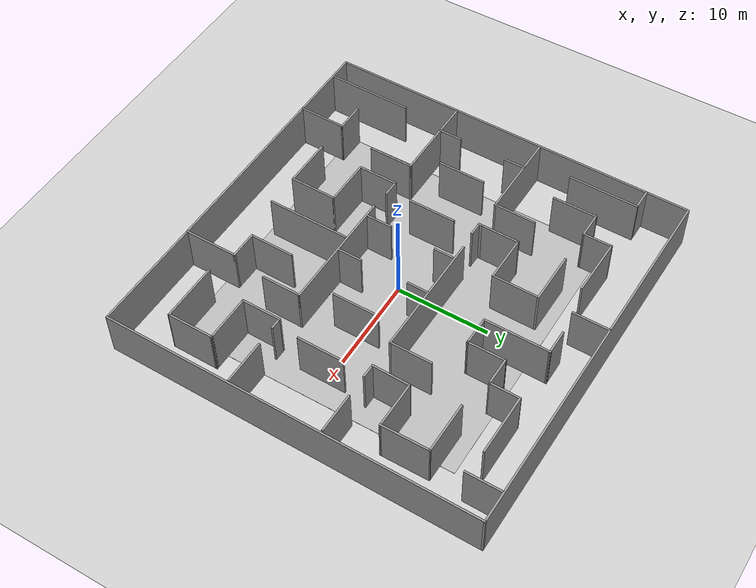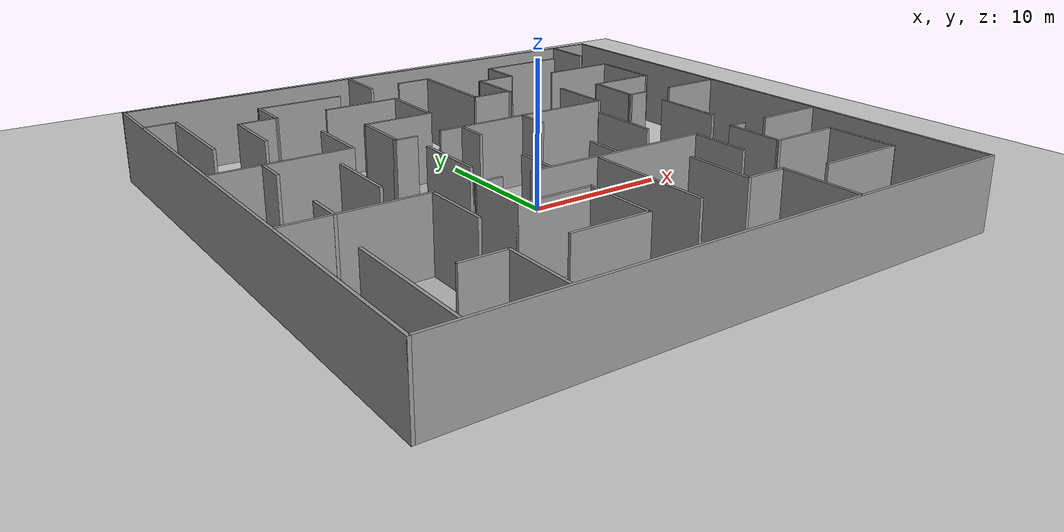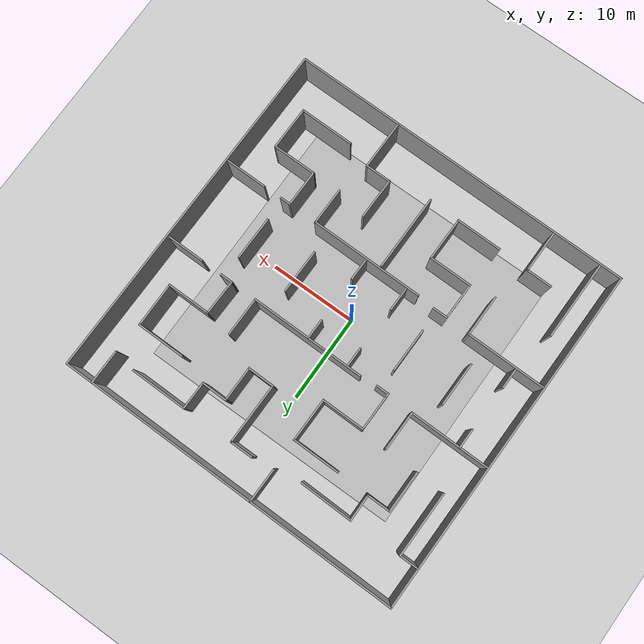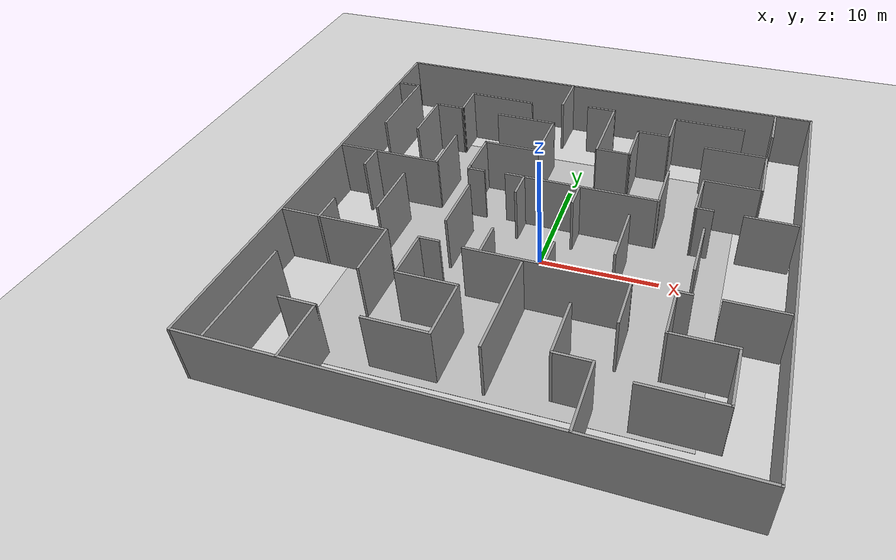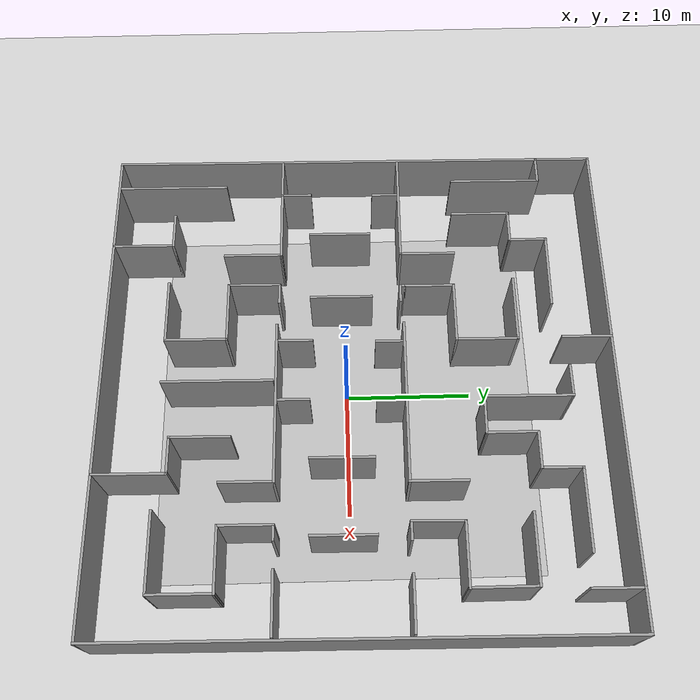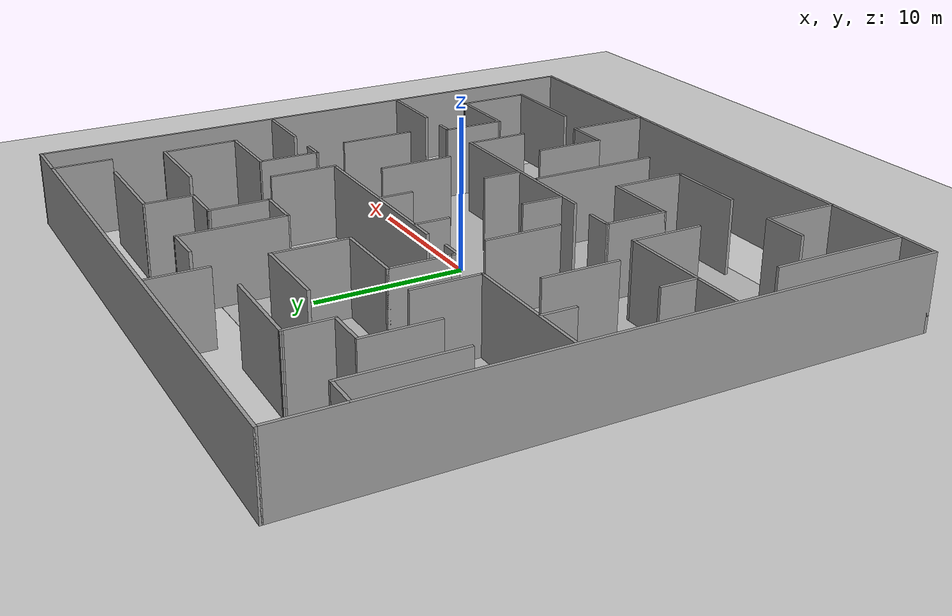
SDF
<sdf version="1.7">
 <world name="default">
  <light name="sun" type="directional">
   <pose>0 0 10 0 -0 0</pose>
   <diffuse>0.8 0.8 0.8 1</diffuse>
   <specular>0.2 0.2 0.2 1</specular>
   <attenuation>
    <range>1000</range>
    <constant>0.9</constant>
    <linear>0.01</linear>
    <quadratic>0.001</quadratic>
   </attenuation>
   <direction>-0.5 0.1 -0.9</direction>
   <spot><inner_angle>0</inner_angle><outer_angle>0</outer_angle><falloff>0</falloff></spot>
  </light>
  <model name="texture">
   <static>true</static>
   <link name="prometheus_logo">
    <visual name="visual">
     <cast_shadows>false</cast_shadows>
     <geometry><box><size>30.0 30.0 0.01</size></box></geometry>
     <material>
      <script><uri>model://prometheus_texture/texture.material</uri><name>prometheus_logo2</name></script>
     </material>
    </visual>
   </link>
  </model>
  <model name="ground_plane">
   <static>1</static>
   <link name="link">
    <collision name="collision">
     <geometry><plane><normal>0 0 1</normal><size>100 100</size></plane></geometry>
     <surface>
      <contact><collide_bitmask>65535</collide_bitmask></contact>
      <friction><ode><mu>100</mu><mu2>50</mu2></ode></friction>
     </surface>
    </collision>
    <visual name="visual">
     <cast_shadows>0</cast_shadows>
     <geometry><plane><normal>0 0 1</normal><size>100 100</size></plane></geometry>
     <material>
      <script><uri>file://media/materials/scripts/gazebo.material</uri><name>Gazebo/Grey</name></script>
     </material>
    </visual>
   </link>
  </model>
  <gravity>0 0 -9.8</gravity>
  <magnetic_field>6e-06 2.3e-05 -4.2e-05</magnetic_field>
  <atmosphere type="adiabatic"/>
  <physics type="ode">
   <max_step_size>0.001</max_step_size>
   <real_time_factor>1</real_time_factor>
   <real_time_update_rate>1000</real_time_update_rate>
  </physics>
  <scene><ambient>0.4 0.4 0.4 1</ambient><background>0.7 0.7 0.7 1</background><shadows>1</shadows></scene>
  <spherical_coordinates>
   <surface_model>EARTH_WGS84</surface_model>
   <latitude_deg>0</latitude_deg>
   <longitude_deg>0</longitude_deg>
   <elevation>0</elevation>
   <heading_deg>0</heading_deg>
  </spherical_coordinates>
  <model name="moze2">
   <pose>0.010084 0.948279 0 0 0 -1.58143</pose>
   <link name="Wall_100">
    <collision name="Wall_100_Collision">
     <geometry><box><size>4.5505 0.2 5</size></box></geometry>
     <pose>0 0 2.5 0 -0 0</pose>
    </collision>
    <visual name="Wall_100_Visual">
     <pose>0 0 2.5 0 -0 0</pose>
     <geometry><box><size>4.5505 0.2 5</size></box></geometry>
     <material>
      <script><uri>file://media/materials/scripts/gazebo.material</uri><name>Gazebo/Grey</name></script>
      <ambient>1 1 1 1</ambient>
     </material>
     <meta><layer>0</layer></meta>
    </visual>
    <pose>-5.834 8.699 0 0 -0 3.14159</pose>
   </link>
   <link name="Wall_102">
    <collision name="Wall_102_Collision">
     <geometry><box><size>5.55 0.2 5</size></box></geometry>
     <pose>0 0 2.5 0 -0 0</pose>
    </collision>
    <visual name="Wall_102_Visual">
     <pose>0 0 2.5 0 -0 0</pose>
     <geometry><box><size>5.55 0.2 5</size></box></geometry>
     <material>
      <script><uri>file://media/materials/scripts/gazebo.material</uri><name>Gazebo/Grey</name></script>
      <ambient>1 1 1 1</ambient>
     </material>
     <meta><layer>0</layer></meta>
    </visual>
    <pose>-12.609 13.877 0 0 -0 1.5708</pose>
   </link>
   <link name="Wall_103">
    <collision name="Wall_103_Collision">
     <geometry><box><size>5.20337 0.2 5</size></box></geometry>
     <pose>0 0 2.5 0 -0 0</pose>
    </collision>
    <visual name="Wall_103_Visual">
     <pose>0 0 2.5 0 -0 0</pose>
     <geometry><box><size>5.20337 0.2 5</size></box></geometry>
     <material>
      <script><uri>file://media/materials/scripts/gazebo.material</uri><name>Gazebo/Grey</name></script>
      <ambient>1 1 1 1</ambient>
     </material>
     <meta><layer>0</layer></meta>
    </visual>
    <pose>-10.1075 16.5825 0 0 -0 0.012192</pose>
   </link>
   <link name="Wall_104">
    <collision name="Wall_104_Collision">
     <geometry><box><size>5.04982 0.2 5</size></box></geometry>
     <pose>0 0 2.5 0 -0 0</pose>
    </collision>
    <visual name="Wall_104_Visual">
     <pose>0 0 2.5 0 -0 0</pose>
     <geometry><box><size>5.04982 0.2 5</size></box></geometry>
     <material>
      <script><uri>file://media/materials/scripts/gazebo.material</uri><name>Gazebo/Grey</name></script>
      <ambient>1 1 1 1</ambient>
     </material>
     <meta><layer>0</layer></meta>
    </visual>
    <pose>-7.606 14.188 0 0 -0 -1.5708</pose>
   </link>
   <link name="Wall_105">
    <collision name="Wall_105_Collision">
     <geometry><box><size>4.14747 0.2 5</size></box></geometry>
     <pose>0 0 2.5 0 -0 0</pose>
    </collision>
    <visual name="Wall_105_Visual">
     <pose>0 0 2.5 0 -0 0</pose>
     <geometry><box><size>4.14747 0.2 5</size></box></geometry>
     <material>
      <script><uri>file://media/materials/scripts/gazebo.material</uri><name>Gazebo/Grey</name></script>
      <ambient>1 1 1 1</ambient>
     </material>
     <meta><layer>0</layer></meta>
    </visual>
    <pose>-5.6325 11.7325 0 0 -0 -0.015454</pose>
   </link>
   <link name="Wall_106">
    <collision name="Wall_106_Collision">
     <geometry><box><size>1.5495 0.2 5</size></box></geometry>
     <pose>0 0 2.5 0 -0 0</pose>
    </collision>
    <visual name="Wall_106_Visual">
     <pose>0 0 2.5 0 -0 0</pose>
     <geometry><box><size>1.5495 0.2 5</size></box></geometry>
     <material>
      <script><uri>file://media/materials/scripts/gazebo.material</uri><name>Gazebo/Grey</name></script>
      <ambient>1 1 1 1</ambient>
     </material>
     <meta><layer>0</layer></meta>
    </visual>
    <pose>-3.659 12.377 0 0 -0 1.5708</pose>
   </link>
   <link name="Wall_149">
    <collision name="Wall_149_Collision">
     <geometry><box><size>5.05035 0.2 5</size></box></geometry>
     <pose>0 0 2.5 0 -0 0</pose>
    </collision>
    <visual name="Wall_149_Visual">
     <pose>0 0 2.5 0 -0 0</pose>
     <geometry><box><size>5.05035 0.2 5</size></box></geometry>
     <material>
      <script><uri>file://media/materials/scripts/gazebo.material</uri><name>Gazebo/Grey</name></script>
      <ambient>1 1 1 1</ambient>
     </material>
     <meta><layer>0</layer></meta>
    </visual>
    <pose>1.288 12.695 0 0 -0 0</pose>
   </link>
   <link name="Wall_151">
    <collision name="Wall_151_Collision">
     <geometry><box><size>5.0498 0.2 5</size></box></geometry>
     <pose>0 0 2.5 0 -0 0</pose>
    </collision>
    <visual name="Wall_151_Visual">
     <pose>0 0 2.5 0 -0 0</pose>
     <geometry><box><size>5.0498 0.2 5</size></box></geometry>
     <material>
      <script><uri>file://media/materials/scripts/gazebo.material</uri><name>Gazebo/Grey</name></script>
      <ambient>1 1 1 1</ambient>
     </material>
     <meta><layer>0</layer></meta>
    </visual>
    <pose>1.329 6.788 0 0 -0 0</pose>
   </link>
   <link name="Wall_153">
    <collision name="Wall_153_Collision">
     <geometry><box><size>5.05039 0.2 5</size></box></geometry>
     <pose>0 0 2.5 0 -0 0</pose>
    </collision>
    <visual name="Wall_153_Visual">
     <pose>0 0 2.5 0 -0 0</pose>
     <geometry><box><size>5.05039 0.2 5</size></box></geometry>
     <material>
      <script><uri>file://media/materials/scripts/gazebo.material</uri><name>Gazebo/Grey</name></script>
      <ambient>1 1 1 1</ambient>
     </material>
     <meta><layer>0</layer></meta>
    </visual>
    <pose>1.375 -12.717 0 0 -0 0</pose>
   </link>
   <link name="Wall_155">
    <collision name="Wall_155_Collision">
     <geometry><box><size>9.25 0.2 5</size></box></geometry>
     <pose>0 0 2.5 0 -0 0</pose>
    </collision>
    <visual name="Wall_155_Visual">
     <pose>0 0 2.5 0 -0 0</pose>
     <geometry><box><size>9.25 0.2 5</size></box></geometry>
     <material>
      <script><uri>file://media/materials/scripts/gazebo.material</uri><name>Gazebo/Grey</name></script>
      <ambient>1 1 1 1</ambient>
     </material>
     <meta><layer>0</layer></meta>
    </visual>
    <pose>6.192 -15.309 0 0 -0 1.5708</pose>
   </link>
   <link name="Wall_156">
    <collision name="Wall_156_Collision">
     <geometry><box><size>4.80038 0.2 5</size></box></geometry>
     <pose>0 0 2.5 0 -0 0</pose>
    </collision>
    <visual name="Wall_156_Visual">
     <pose>0 0 2.5 0 -0 0</pose>
     <geometry><box><size>4.80038 0.2 5</size></box></geometry>
     <material>
      <script><uri>file://media/materials/scripts/gazebo.material</uri><name>Gazebo/Grey</name></script>
      <ambient>1 1 1 1</ambient>
     </material>
     <meta><layer>0</layer></meta>
    </visual>
    <pose>8.492 -10.784 0 0 -0 0</pose>
   </link>
   <link name="Wall_158">
    <collision name="Wall_158_Collision">
     <geometry><box><size>9 0.2 5</size></box></geometry>
     <pose>0 0 2.5 0 -0 0</pose>
    </collision>
    <visual name="Wall_158_Visual">
     <pose>0 0 2.5 0 -0 0</pose>
     <geometry><box><size>9 0.2 5</size></box></geometry>
     <material>
      <script><uri>file://media/materials/scripts/gazebo.material</uri><name>Gazebo/Grey</name></script>
      <ambient>1 1 1 1</ambient>
     </material>
     <meta><layer>0</layer></meta>
    </visual>
    <pose>15.407 -17.518 0 0 -0 3.14159</pose>
   </link>
   <link name="Wall_161">
    <collision name="Wall_161_Collision">
     <geometry><box><size>3.05 0.2 5</size></box></geometry>
     <pose>0 0 2.5 0 -0 0</pose>
    </collision>
    <visual name="Wall_161_Visual">
     <pose>0 0 2.5 0 -0 0</pose>
     <geometry><box><size>3.05 0.2 5</size></box></geometry>
     <material>
      <script><uri>file://media/materials/scripts/gazebo.material</uri><name>Gazebo/Grey</name></script>
      <ambient>1 1 1 1</ambient>
     </material>
     <meta><layer>0</layer></meta>
    </visual>
    <pose>15.107 -13.243 0 0 -0 1.5708</pose>
   </link>
   <link name="Wall_162">
    <collision name="Wall_162_Collision">
     <geometry><box><size>5.04975 0.2 5</size></box></geometry>
     <pose>0 0 2.5 0 -0 0</pose>
    </collision>
    <visual name="Wall_162_Visual">
     <pose>0 0 2.5 0 -0 0</pose>
     <geometry><box><size>5.04975 0.2 5</size></box></geometry>
     <material>
      <script><uri>file://media/materials/scripts/gazebo.material</uri><name>Gazebo/Grey</name></script>
      <ambient>1 1 1 1</ambient>
     </material>
     <meta><layer>0</layer></meta>
    </visual>
    <pose>17.532 -11.818 0 0 -0 0</pose>
   </link>
   <link name="Wall_164">
    <collision name="Wall_164_Collision">
     <geometry><box><size>1.8 0.2 5</size></box></geometry>
     <pose>0 0 2.5 0 -0 0</pose>
    </collision>
    <visual name="Wall_164_Visual">
     <pose>0 0 2.5 0 -0 0</pose>
     <geometry><box><size>1.8 0.2 5</size></box></geometry>
     <material>
      <script><uri>file://media/materials/scripts/gazebo.material</uri><name>Gazebo/Grey</name></script>
      <ambient>1 1 1 1</ambient>
     </material>
     <meta><layer>0</layer></meta>
    </visual>
    <pose>6.266 -7.202 0 0 -0 -1.5708</pose>
   </link>
   <link name="Wall_165">
    <collision name="Wall_165_Collision">
     <geometry><box><size>4.3 0.2 5</size></box></geometry>
     <pose>0 0 2.5 0 -0 0</pose>
    </collision>
    <visual name="Wall_165_Visual">
     <pose>0 0 2.5 0 -0 0</pose>
     <geometry><box><size>4.3 0.2 5</size></box></geometry>
     <material>
      <script><uri>file://media/materials/scripts/gazebo.material</uri><name>Gazebo/Grey</name></script>
      <ambient>1 1 1 1</ambient>
     </material>
     <meta><layer>0</layer></meta>
    </visual>
    <pose>8.316 -8.002 0 0 -0 0</pose>
   </link>
   <link name="Wall_166">
    <collision name="Wall_166_Collision">
     <geometry><box><size>5.05 0.2 5</size></box></geometry>
     <pose>0 0 2.5 0 -0 0</pose>
    </collision>
    <visual name="Wall_166_Visual">
     <pose>0 0 2.5 0 -0 0</pose>
     <geometry><box><size>5.05 0.2 5</size></box></geometry>
     <material>
      <script><uri>file://media/materials/scripts/gazebo.material</uri><name>Gazebo/Grey</name></script>
      <ambient>1 1 1 1</ambient>
     </material>
     <meta><layer>0</layer></meta>
    </visual>
    <pose>10.366 -5.577 0 0 -0 1.5708</pose>
   </link>
   <link name="Wall_167">
    <collision name="Wall_167_Collision">
     <geometry><box><size>5.05 0.2 5</size></box></geometry>
     <pose>0 0 2.5 0 -0 0</pose>
    </collision>
    <visual name="Wall_167_Visual">
     <pose>0 0 2.5 0 -0 0</pose>
     <geometry><box><size>5.05 0.2 5</size></box></geometry>
     <material>
      <script><uri>file://media/materials/scripts/gazebo.material</uri><name>Gazebo/Grey</name></script>
      <ambient>1 1 1 1</ambient>
     </material>
     <meta><layer>0</layer></meta>
    </visual>
    <pose>12.791 -3.152 0 0 -0 0</pose>
   </link>
   <link name="Wall_168">
    <collision name="Wall_168_Collision">
     <geometry><box><size>5.29959 0.2 5</size></box></geometry>
     <pose>0 0 2.5 0 -0 0</pose>
    </collision>
    <visual name="Wall_168_Visual">
     <pose>0 0 2.5 0 -0 0</pose>
     <geometry><box><size>5.29959 0.2 5</size></box></geometry>
     <material>
      <script><uri>file://media/materials/scripts/gazebo.material</uri><name>Gazebo/Grey</name></script>
      <ambient>1 1 1 1</ambient>
     </material>
     <meta><layer>0</layer></meta>
    </visual>
    <pose>15.216 -5.702 0 0 -0 -1.5708</pose>
   </link>
   <link name="Wall_170">
    <collision name="Wall_170_Collision">
     <geometry><box><size>2.30029 0.2 5</size></box></geometry>
     <pose>0 0 2.5 0 -0 0</pose>
    </collision>
    <visual name="Wall_170_Visual">
     <pose>0 0 2.5 0 -0 0</pose>
     <geometry><box><size>2.30029 0.2 5</size></box></geometry>
     <material>
      <script><uri>file://media/materials/scripts/gazebo.material</uri><name>Gazebo/Grey</name></script>
      <ambient>1 1 1 1</ambient>
     </material>
     <meta><layer>0</layer></meta>
    </visual>
    <pose>-2.506 2.04 0 0 -0 0</pose>
   </link>
   <link name="Wall_172">
    <collision name="Wall_172_Collision">
     <geometry><box><size>2.29971 0.2 5</size></box></geometry>
     <pose>0 0 2.5 0 -0 0</pose>
    </collision>
    <visual name="Wall_172_Visual">
     <pose>0 0 2.5 0 -0 0</pose>
     <geometry><box><size>2.29971 0.2 5</size></box></geometry>
     <material>
      <script><uri>file://media/materials/scripts/gazebo.material</uri><name>Gazebo/Grey</name></script>
      <ambient>1 1 1 1</ambient>
     </material>
     <meta><layer>0</layer></meta>
    </visual>
    <pose>-2.506 -2.81 0 0 -0 3.14159</pose>
   </link>
   <link name="Wall_174">
    <collision name="Wall_174_Collision">
     <geometry><box><size>13.11 0.2 5</size></box></geometry>
     <pose>0 0 2.5 0 -0 0</pose>
    </collision>
    <visual name="Wall_174_Visual">
     <pose>0 0 2.5 0 -0 0</pose>
     <geometry><box><size>13.11 0.2 5</size></box></geometry>
     <material>
      <script><uri>file://media/materials/scripts/gazebo.material</uri><name>Gazebo/Grey</name></script>
      <ambient>1 1 1 1</ambient>
     </material>
     <meta><layer>0</layer></meta>
    </visual>
    <pose>6.424 2.132 0 0 -0 1.5708</pose>
   </link>
   <link name="Wall_175">
    <collision name="Wall_175_Collision">
     <geometry><box><size>4.3 0.2 5</size></box></geometry>
     <pose>0 0 2.5 0 -0 0</pose>
    </collision>
    <visual name="Wall_175_Visual">
     <pose>0 0 2.5 0 -0 0</pose>
     <geometry><box><size>4.3 0.2 5</size></box></geometry>
     <material>
      <script><uri>file://media/materials/scripts/gazebo.material</uri><name>Gazebo/Grey</name></script>
      <ambient>1 1 1 1</ambient>
     </material>
     <meta><layer>0</layer></meta>
    </visual>
    <pose>8.474 8.587 0 0 -0 0</pose>
   </link>
   <link name="Wall_177">
    <collision name="Wall_177_Collision">
     <geometry><box><size>2.54968 0.2 5</size></box></geometry>
     <pose>0 0 2.5 0 -0 0</pose>
    </collision>
    <visual name="Wall_177_Visual">
     <pose>0 0 2.5 0 -0 0</pose>
     <geometry><box><size>2.54968 0.2 5</size></box></geometry>
     <material>
      <script><uri>file://media/materials/scripts/gazebo.material</uri><name>Gazebo/Grey</name></script>
      <ambient>1 1 1 1</ambient>
     </material>
     <meta><layer>0</layer></meta>
    </visual>
    <pose>5.023 -16.616 0 0 -0 0</pose>
   </link>
   <link name="Wall_179">
    <collision name="Wall_179_Collision">
     <geometry><box><size>2.30003 0.2 5</size></box></geometry>
     <pose>0 0 2.5 0 -0 0</pose>
    </collision>
    <visual name="Wall_179_Visual">
     <pose>0 0 2.5 0 -0 0</pose>
     <geometry><box><size>2.30003 0.2 5</size></box></geometry>
     <material>
      <script><uri>file://media/materials/scripts/gazebo.material</uri><name>Gazebo/Grey</name></script>
      <ambient>1 1 1 1</ambient>
     </material>
     <meta><layer>0</layer></meta>
    </visual>
    <pose>-2.498 -16.545 0 0 -0 0</pose>
   </link>
   <link name="Wall_182">
    <collision name="Wall_182_Collision">
     <geometry><box><size>2.79954 0.2 5</size></box></geometry>
     <pose>0 0 2.5 0 -0 0</pose>
    </collision>
    <visual name="Wall_182_Visual">
     <pose>0 0 2.5 0 -0 0</pose>
     <geometry><box><size>2.79954 0.2 5</size></box></geometry>
     <material>
      <script><uri>file://media/materials/scripts/gazebo.material</uri><name>Gazebo/Grey</name></script>
      <ambient>1 1 1 1</ambient>
     </material>
     <meta><layer>0</layer></meta>
    </visual>
    <pose>4.946 -2.972 0 0 -0 3.14159</pose>
   </link>
   <link name="Wall_184">
    <collision name="Wall_184_Collision">
     <geometry><box><size>2.54982 0.2 5</size></box></geometry>
     <pose>0 0 2.5 0 -0 0</pose>
    </collision>
    <visual name="Wall_184_Visual">
     <pose>0 0 2.5 0 -0 0</pose>
     <geometry><box><size>2.54982 0.2 5</size></box></geometry>
     <material>
      <script><uri>file://media/materials/scripts/gazebo.material</uri><name>Gazebo/Grey</name></script>
      <ambient>1 1 1 1</ambient>
     </material>
     <meta><layer>0</layer></meta>
    </visual>
    <pose>5.043 2.065 0 0 -0 0</pose>
   </link>
   <link name="Wall_186">
    <collision name="Wall_186_Collision">
     <geometry><box><size>5.04982 0.2 5</size></box></geometry>
     <pose>0 0 2.5 0 -0 0</pose>
    </collision>
    <visual name="Wall_186_Visual">
     <pose>0 0 2.5 0 -0 0</pose>
     <geometry><box><size>5.04982 0.2 5</size></box></geometry>
     <material>
      <script><uri>file://media/materials/scripts/gazebo.material</uri><name>Gazebo/Grey</name></script>
      <ambient>1 1 1 1</ambient>
     </material>
     <meta><layer>0</layer></meta>
    </visual>
    <pose>12.901 16.753 0 0 -0 3.14159</pose>
   </link>
   <link name="Wall_187">
    <collision name="Wall_187_Collision">
     <geometry><box><size>5.10211 0.2 5</size></box></geometry>
     <pose>0 0 2.5 0 -0 0</pose>
    </collision>
    <visual name="Wall_187_Visual">
     <pose>0 0 2.5 0 -0 0</pose>
     <geometry><box><size>5.10211 0.2 5</size></box></geometry>
     <material>
      <script><uri>file://media/materials/scripts/gazebo.material</uri><name>Gazebo/Grey</name></script>
      <ambient>1 1 1 1</ambient>
     </material>
     <meta><layer>0</layer></meta>
    </visual>
    <pose>10.4805 14.302 0 0 -0 -1.56896</pose>
   </link>
   <link name="Wall_188">
    <collision name="Wall_188_Collision">
     <geometry><box><size>4.3004 0.2 5</size></box></geometry>
     <pose>0 0 2.5 0 -0 0</pose>
    </collision>
    <visual name="Wall_188_Visual">
     <pose>0 0 2.5 0 -0 0</pose>
     <geometry><box><size>4.3004 0.2 5</size></box></geometry>
     <material>
      <script><uri>file://media/materials/scripts/gazebo.material</uri><name>Gazebo/Grey</name></script>
      <ambient>1 1 1 1</ambient>
     </material>
     <meta><layer>0</layer></meta>
    </visual>
    <pose>8.435 11.851 0 0 -0 3.14159</pose>
   </link>
   <link name="Wall_189">
    <collision name="Wall_189_Collision">
     <geometry><box><size>1.2999 0.2 5</size></box></geometry>
     <pose>0 0 2.5 0 -0 0</pose>
    </collision>
    <visual name="Wall_189_Visual">
     <pose>0 0 2.5 0 -0 0</pose>
     <geometry><box><size>1.2999 0.2 5</size></box></geometry>
     <material>
      <script><uri>file://media/materials/scripts/gazebo.material</uri><name>Gazebo/Grey</name></script>
      <ambient>1 1 1 1</ambient>
     </material>
     <meta><layer>0</layer></meta>
    </visual>
    <pose>6.385 12.401 0 0 -0 1.5708</pose>
   </link>
   <link name="Wall_191">
    <collision name="Wall_191_Collision">
     <geometry><box><size>5.75 0.2 5</size></box></geometry>
     <pose>0 0 2.5 0 -0 0</pose>
    </collision>
    <visual name="Wall_191_Visual">
     <pose>0 0 2.5 0 -0 0</pose>
     <geometry><box><size>5.75 0.2 5</size></box></geometry>
     <material>
      <script><uri>file://media/materials/scripts/gazebo.material</uri><name>Gazebo/Grey</name></script>
      <ambient>1 1 1 1</ambient>
     </material>
     <meta><layer>0</layer></meta>
    </visual>
    <pose>17.179 7.858 0 0 -0 3.14159</pose>
   </link>
   <link name="Wall_192">
    <collision name="Wall_192_Collision">
     <geometry><box><size>3.05 0.2 5</size></box></geometry>
     <pose>0 0 2.5 0 -0 0</pose>
    </collision>
    <visual name="Wall_192_Visual">
     <pose>0 0 2.5 0 -0 0</pose>
     <geometry><box><size>3.05 0.2 5</size></box></geometry>
     <material>
      <script><uri>file://media/materials/scripts/gazebo.material</uri><name>Gazebo/Grey</name></script>
      <ambient>1 1 1 1</ambient>
     </material>
     <meta><layer>0</layer></meta>
    </visual>
    <pose>14.404 6.433 0 0 -0 -1.5708</pose>
   </link>
   <link name="Wall_193">
    <collision name="Wall_193_Collision">
     <geometry><box><size>4.8004 0.2 5</size></box></geometry>
     <pose>0 0 2.5 0 -0 0</pose>
    </collision>
    <visual name="Wall_193_Visual">
     <pose>0 0 2.5 0 -0 0</pose>
     <geometry><box><size>4.8004 0.2 5</size></box></geometry>
     <material>
      <script><uri>file://media/materials/scripts/gazebo.material</uri><name>Gazebo/Grey</name></script>
      <ambient>1 1 1 1</ambient>
     </material>
     <meta><layer>0</layer></meta>
    </visual>
    <pose>12.104 5.008 0 0 -0 3.14159</pose>
   </link>
   <link name="Wall_195">
    <collision name="Wall_195_Collision">
     <geometry><box><size>4.79978 0.2 5</size></box></geometry>
     <pose>0 0 2.5 0 -0 0</pose>
    </collision>
    <visual name="Wall_195_Visual">
     <pose>0 0 2.5 0 -0 0</pose>
     <geometry><box><size>4.79978 0.2 5</size></box></geometry>
     <material>
      <script><uri>file://media/materials/scripts/gazebo.material</uri><name>Gazebo/Grey</name></script>
      <ambient>1 1 1 1</ambient>
     </material>
     <meta><layer>0</layer></meta>
    </visual>
    <pose>6.343 17.439 0 0 -0 1.5708</pose>
   </link>
   <link name="Wall_197">
    <collision name="Wall_197_Collision">
     <geometry><box><size>4.30039 0.2 5</size></box></geometry>
     <pose>0 0 2.5 0 -0 0</pose>
    </collision>
    <visual name="Wall_197_Visual">
     <pose>0 0 2.5 0 -0 0</pose>
     <geometry><box><size>4.30039 0.2 5</size></box></geometry>
     <material>
      <script><uri>file://media/materials/scripts/gazebo.material</uri><name>Gazebo/Grey</name></script>
      <ambient>1 1 1 1</ambient>
     </material>
     <meta><layer>0</layer></meta>
    </visual>
    <pose>-3.659 17.614 0 0 -0 1.5708</pose>
   </link>
   <link name="Wall_200">
    <collision name="Wall_200_Collision">
     <geometry><box><size>8.75 0.2 5</size></box></geometry>
     <pose>0 0 2.5 0 -0 0</pose>
    </collision>
    <visual name="Wall_200_Visual">
     <pose>0 0 2.5 0 -0 0</pose>
     <geometry><box><size>8.75 0.2 5</size></box></geometry>
     <material>
      <script><uri>file://media/materials/scripts/gazebo.material</uri><name>Gazebo/Grey</name></script>
      <ambient>1 1 1 1</ambient>
     </material>
     <meta><layer>0</layer></meta>
    </visual>
    <pose>10.997 0.431 0 0 -0 0</pose>
   </link>
   <link name="Wall_48">
    <collision name="Wall_48_Collision">
     <geometry><box><size>40.2 0.2 5</size></box></geometry>
     <pose>0 0 2.5 0 -0 0</pose>
    </collision>
    <visual name="Wall_48_Visual">
     <pose>0 0 2.5 0 -0 0</pose>
     <geometry><box><size>40.2 0.2 5</size></box></geometry>
     <material>
      <script><uri>file://media/materials/scripts/gazebo.material</uri><name>Gazebo/Grey</name></script>
      <ambient>1 1 1 1</ambient>
     </material>
     <meta><layer>0</layer></meta>
    </visual>
    <pose>0 20 0 0 -0 0</pose>
   </link>
   <link name="Wall_50">
    <collision name="Wall_50_Collision">
     <geometry><box><size>40.2 0.2 5</size></box></geometry>
     <pose>0 0 2.5 0 -0 0</pose>
    </collision>
    <visual name="Wall_50_Visual">
     <pose>0 0 2.5 0 -0 0</pose>
     <geometry><box><size>40.2 0.2 5</size></box></geometry>
     <material>
      <script><uri>file://media/materials/scripts/gazebo.material</uri><name>Gazebo/Grey</name></script>
      <ambient>1 1 1 1</ambient>
     </material>
     <meta><layer>0</layer></meta>
    </visual>
    <pose>-20 0 0 0 -0 -1.5708</pose>
   </link>
   <link name="Wall_52">
    <collision name="Wall_52_Collision">
     <geometry><box><size>0.15 0.15 2.5</size></box></geometry>
     <pose>0 0 1.25 0 -0 0</pose>
    </collision>
    <visual name="Wall_52_Visual">
     <pose>0 0 1.25 0 -0 0</pose>
     <geometry><box><size>0.15 0.15 2.5</size></box></geometry>
     <material>
      <script><uri>file://media/materials/scripts/gazebo.material</uri><name>Gazebo/Grey</name></script>
      <ambient>1 1 1 1</ambient>
     </material>
     <meta><layer>0</layer></meta>
    </visual>
    <pose>-20 -20 0 0 -0 0</pose>
   </link>
   <link name="Wall_53">
    <collision name="Wall_53_Collision">
     <geometry><box><size>40.2 0.2 5</size></box></geometry>
     <pose>0 0 2.5 0 -0 0</pose>
    </collision>
    <visual name="Wall_53_Visual">
     <pose>0 0 2.5 0 -0 0</pose>
     <geometry><box><size>40.2 0.2 5</size></box></geometry>
     <material>
      <script><uri>file://media/materials/scripts/gazebo.material</uri><name>Gazebo/Grey</name></script>
      <ambient>1 1 1 1</ambient>
     </material>
     <meta><layer>0</layer></meta>
    </visual>
    <pose>0 -20 0 0 -0 0</pose>
   </link>
   <link name="Wall_55">
    <collision name="Wall_55_Collision">
     <geometry><box><size>40.2 0.2 5</size></box></geometry>
     <pose>0 0 2.5 0 -0 0</pose>
    </collision>
    <visual name="Wall_55_Visual">
     <pose>0 0 2.5 0 -0 0</pose>
     <geometry><box><size>40.2 0.2 5</size></box></geometry>
     <material>
      <script><uri>file://media/materials/scripts/gazebo.material</uri><name>Gazebo/Grey</name></script>
      <ambient>1 1 1 1</ambient>
     </material>
     <meta><layer>0</layer></meta>
    </visual>
    <pose>20 0 0 0 -0 -1.5708</pose>
   </link>
   <link name="Wall_57">
    <collision name="Wall_57_Collision">
     <geometry><box><size>4 0.2 5</size></box></geometry>
     <pose>0 0 2.5 0 -0 0</pose>
    </collision>
    <visual name="Wall_57_Visual">
     <pose>0 0 2.5 0 -0 0</pose>
     <geometry><box><size>4 0.2 5</size></box></geometry>
     <material>
      <script><uri>file://media/materials/scripts/gazebo.material</uri><name>Gazebo/Grey</name></script>
      <ambient>1 1 1 1</ambient>
     </material>
     <meta><layer>0</layer></meta>
    </visual>
    <pose>-18.0887 16.7784 0 0 -0 0</pose>
   </link>
   <link name="Wall_59">
    <collision name="Wall_59_Collision">
     <geometry><box><size>4 0.2 5</size></box></geometry>
     <pose>0 0 2.5 0 -0 0</pose>
    </collision>
    <visual name="Wall_59_Visual">
     <pose>0 0 2.5 0 -0 0</pose>
     <geometry><box><size>4 0.2 5</size></box></geometry>
     <material>
      <script><uri>file://media/materials/scripts/gazebo.material</uri><name>Gazebo/Grey</name></script>
      <ambient>1 1 1 1</ambient>
     </material>
     <meta><layer>0</layer></meta>
    </visual>
    <pose>-18.077 -3 0 0 -0 0</pose>
   </link>
   <link name="Wall_62">
    <collision name="Wall_62_Collision">
     <geometry><box><size>6.25211 0.2 5</size></box></geometry>
     <pose>0 0 2.5 0 -0 0</pose>
    </collision>
    <visual name="Wall_62_Visual">
     <pose>0 0 2.5 0 -0 0</pose>
     <geometry><box><size>6.25211 0.2 5</size></box></geometry>
     <material>
      <script><uri>file://media/materials/scripts/gazebo.material</uri><name>Gazebo/Grey</name></script>
      <ambient>1 1 1 1</ambient>
     </material>
     <meta><layer>0</layer></meta>
    </visual>
    <pose>15.3303 13.7269 0 0 -0 -1.56938</pose>
   </link>
   <link name="Wall_67">
    <collision name="Wall_67_Collision">
     <geometry><box><size>6.55013 0.2 5</size></box></geometry>
     <pose>0 0 2.5 0 -0 0</pose>
    </collision>
    <visual name="Wall_67_Visual">
     <pose>0 0 2.5 0 -0 0</pose>
     <geometry><box><size>6.55013 0.2 5</size></box></geometry>
     <material>
      <script><uri>file://media/materials/scripts/gazebo.material</uri><name>Gazebo/Grey</name></script>
      <ambient>1 1 1 1</ambient>
     </material>
     <meta><layer>0</layer></meta>
    </visual>
    <pose>-16.602 11.003 0 0 -0 -1.5708</pose>
   </link>
   <link name="Wall_68">
    <collision name="Wall_68_Collision">
     <geometry><box><size>3.29107 0.2 5</size></box></geometry>
     <pose>0 0 2.5 0 -0 0</pose>
    </collision>
    <visual name="Wall_68_Visual">
     <pose>0 0 2.5 0 -0 0</pose>
     <geometry><box><size>3.29107 0.2 5</size></box></geometry>
     <material>
      <script><uri>file://media/materials/scripts/gazebo.material</uri><name>Gazebo/Grey</name></script>
      <ambient>1 1 1 1</ambient>
     </material>
     <meta><layer>0</layer></meta>
    </visual>
    <pose>-15.0565 7.818 0 0 -0 -0.00647</pose>
   </link>
   <link name="Wall_69">
    <collision name="Wall_69_Collision">
     <geometry><box><size>3.05024 0.2 5</size></box></geometry>
     <pose>0 0 2.5 0 -0 0</pose>
    </collision>
    <visual name="Wall_69_Visual">
     <pose>0 0 2.5 0 -0 0</pose>
     <geometry><box><size>3.05024 0.2 5</size></box></geometry>
     <material>
      <script><uri>file://media/materials/scripts/gazebo.material</uri><name>Gazebo/Grey</name></script>
      <ambient>1 1 1 1</ambient>
     </material>
     <meta><layer>0</layer></meta>
    </visual>
    <pose>-13.511 6.383 0 0 -0 -1.5708</pose>
   </link>
   <link name="Wall_70">
    <collision name="Wall_70_Collision">
     <geometry><box><size>4.09933 0.2 5</size></box></geometry>
     <pose>0 0 2.5 0 -0 0</pose>
    </collision>
    <visual name="Wall_70_Visual">
     <pose>0 0 2.5 0 -0 0</pose>
     <geometry><box><size>4.09933 0.2 5</size></box></geometry>
     <material>
      <script><uri>file://media/materials/scripts/gazebo.material</uri><name>Gazebo/Grey</name></script>
      <ambient>1 1 1 1</ambient>
     </material>
     <meta><layer>0</layer></meta>
    </visual>
    <pose>-11.5615 4.968 0 0 -0 0.005129</pose>
   </link>
   <link name="Wall_71">
    <collision name="Wall_71_Collision">
     <geometry><box><size>3.16609 0.2 5</size></box></geometry>
     <pose>0 0 2.5 0 -0 0</pose>
    </collision>
    <visual name="Wall_71_Visual">
     <pose>0 0 2.5 0 -0 0</pose>
     <geometry><box><size>3.16609 0.2 5</size></box></geometry>
     <material>
      <script><uri>file://media/materials/scripts/gazebo.material</uri><name>Gazebo/Grey</name></script>
      <ambient>1 1 1 1</ambient>
     </material>
     <meta><layer>0</layer></meta>
    </visual>
    <pose>-9.6235 3.495 0 0 -0 -1.57855</pose>
   </link>
   <link name="Wall_72">
    <collision name="Wall_72_Collision">
     <geometry><box><size>7.04985 0.2 5</size></box></geometry>
     <pose>0 0 2.5 0 -0 0</pose>
    </collision>
    <visual name="Wall_72_Visual">
     <pose>0 0 2.5 0 -0 0</pose>
     <geometry><box><size>7.04985 0.2 5</size></box></geometry>
     <material>
      <script><uri>file://media/materials/scripts/gazebo.material</uri><name>Gazebo/Grey</name></script>
      <ambient>1 1 1 1</ambient>
     </material>
     <meta><layer>0</layer></meta>
    </visual>
    <pose>-13.06 2.012 0 0 -0 3.14159</pose>
   </link>
   <link name="Wall_73">
    <collision name="Wall_73_Collision">
     <geometry><box><size>2.68424 0.2 5</size></box></geometry>
     <pose>0 0 2.5 0 -0 0</pose>
    </collision>
    <visual name="Wall_73_Visual">
     <pose>0 0 2.5 0 -0 0</pose>
     <geometry><box><size>2.68424 0.2 5</size></box></geometry>
     <material>
      <script><uri>file://media/materials/scripts/gazebo.material</uri><name>Gazebo/Grey</name></script>
      <ambient>1 1 1 1</ambient>
     </material>
     <meta><layer>0</layer></meta>
    </visual>
    <pose>-16.4735 0.77 0 0 -0 -1.56154</pose>
   </link>
   <link name="Wall_76">
    <collision name="Wall_76_Collision">
     <geometry><box><size>6.20041 0.2 5</size></box></geometry>
     <pose>0 0 2.5 0 -0 0</pose>
    </collision>
    <visual name="Wall_76_Visual">
     <pose>0 0 2.5 0 -0 0</pose>
     <geometry><box><size>6.20041 0.2 5</size></box></geometry>
     <material>
      <script><uri>file://media/materials/scripts/gazebo.material</uri><name>Gazebo/Grey</name></script>
      <ambient>1 1 1 1</ambient>
     </material>
     <meta><layer>0</layer></meta>
    </visual>
    <pose>-15.598 -9 0 0 -0 -1.58246</pose>
   </link>
   <link name="Wall_77">
    <collision name="Wall_77_Collision">
     <geometry><box><size>3.15521 0.2 5</size></box></geometry>
     <pose>0 0 2.5 0 -0 0</pose>
    </collision>
    <visual name="Wall_77_Visual">
     <pose>0 0 2.5 0 -0 0</pose>
     <geometry><box><size>3.15521 0.2 5</size></box></geometry>
     <material>
      <script><uri>file://media/materials/scripts/gazebo.material</uri><name>Gazebo/Grey</name></script>
      <ambient>1 1 1 1</ambient>
     </material>
     <meta><layer>0</layer></meta>
    </visual>
    <pose>-14.1555 -11.9825 0 0 -0 0.011844</pose>
   </link>
   <link name="Wall_78">
    <collision name="Wall_78_Collision">
     <geometry><box><size>2.8 0.2 5</size></box></geometry>
     <pose>0 0 2.5 0 -0 0</pose>
    </collision>
    <visual name="Wall_78_Visual">
     <pose>0 0 2.5 0 -0 0</pose>
     <geometry><box><size>2.8 0.2 5</size></box></geometry>
     <material>
      <script><uri>file://media/materials/scripts/gazebo.material</uri><name>Gazebo/Grey</name></script>
      <ambient>1 1 1 1</ambient>
     </material>
     <meta><layer>0</layer></meta>
    </visual>
    <pose>-12.678 -13.265 0 0 -0 -1.5708</pose>
   </link>
   <link name="Wall_79">
    <collision name="Wall_79_Collision">
     <geometry><box><size>4.80032 0.2 5</size></box></geometry>
     <pose>0 0 2.5 0 -0 0</pose>
    </collision>
    <visual name="Wall_79_Visual">
     <pose>0 0 2.5 0 -0 0</pose>
     <geometry><box><size>4.80032 0.2 5</size></box></geometry>
     <material>
      <script><uri>file://media/materials/scripts/gazebo.material</uri><name>Gazebo/Grey</name></script>
      <ambient>1 1 1 1</ambient>
     </material>
     <meta><layer>0</layer></meta>
    </visual>
    <pose>-10.378 -14.565 0 0 -0 0</pose>
   </link>
   <link name="Wall_81">
    <collision name="Wall_81_Collision">
     <geometry><box><size>2.2998 0.2 5</size></box></geometry>
     <pose>0 0 2.5 0 -0 0</pose>
    </collision>
    <visual name="Wall_81_Visual">
     <pose>0 0 2.5 0 -0 0</pose>
     <geometry><box><size>2.2998 0.2 5</size></box></geometry>
     <material>
      <script><uri>file://media/materials/scripts/gazebo.material</uri><name>Gazebo/Grey</name></script>
      <ambient>1 1 1 1</ambient>
     </material>
     <meta><layer>0</layer></meta>
    </visual>
    <pose>-15.499 -18.902 0 0 -0 1.5708</pose>
   </link>
   <link name="Wall_82">
    <collision name="Wall_82_Collision">
     <geometry><box><size>7.49634 0.2 5</size></box></geometry>
     <pose>0 0 2.5 0 -0 0</pose>
    </collision>
    <visual name="Wall_82_Visual">
     <pose>0 0 2.5 0 -0 0</pose>
     <geometry><box><size>7.49634 0.2 5</size></box></geometry>
     <material>
      <script><uri>file://media/materials/scripts/gazebo.material</uri><name>Gazebo/Grey</name></script>
      <ambient>1 1 1 1</ambient>
     </material>
     <meta><layer>0</layer></meta>
    </visual>
    <pose>-11.851 -17.852 0 0 -0 0</pose>
   </link>
   <link name="Wall_84">
    <collision name="Wall_84_Collision">
     <geometry><box><size>9.3 0.2 5</size></box></geometry>
     <pose>0 0 2.5 0 -0 0</pose>
    </collision>
    <visual name="Wall_84_Visual">
     <pose>0 0 2.5 0 -0 0</pose>
     <geometry><box><size>9.3 0.2 5</size></box></geometry>
     <material>
      <script><uri>file://media/materials/scripts/gazebo.material</uri><name>Gazebo/Grey</name></script>
      <ambient>1 1 1 1</ambient>
     </material>
     <meta><layer>0</layer></meta>
    </visual>
    <pose>-3.588 -15.309 0 0 -0 1.5708</pose>
   </link>
   <link name="Wall_85">
    <collision name="Wall_85_Collision">
     <geometry><box><size>4.54959 0.2 5</size></box></geometry>
     <pose>0 0 2.5 0 -0 0</pose>
    </collision>
    <visual name="Wall_85_Visual">
     <pose>0 0 2.5 0 -0 0</pose>
     <geometry><box><size>4.54959 0.2 5</size></box></geometry>
     <material>
      <script><uri>file://media/materials/scripts/gazebo.material</uri><name>Gazebo/Grey</name></script>
      <ambient>1 1 1 1</ambient>
     </material>
     <meta><layer>0</layer></meta>
    </visual>
    <pose>-5.763 -10.759 0 0 -0 3.14159</pose>
   </link>
   <link name="Wall_87">
    <collision name="Wall_87_Collision">
     <geometry><box><size>5.55 0.2 5</size></box></geometry>
     <pose>0 0 2.5 0 -0 0</pose>
    </collision>
    <visual name="Wall_87_Visual">
     <pose>0 0 2.5 0 -0 0</pose>
     <geometry><box><size>5.55 0.2 5</size></box></geometry>
     <material>
      <script><uri>file://media/materials/scripts/gazebo.material</uri><name>Gazebo/Grey</name></script>
      <ambient>1 1 1 1</ambient>
     </material>
     <meta><layer>0</layer></meta>
    </visual>
    <pose>-12.63 -5.574 0 0 -0 1.5708</pose>
   </link>
   <link name="Wall_88">
    <collision name="Wall_88_Collision">
     <geometry><box><size>5.05 0.2 5</size></box></geometry>
     <pose>0 0 2.5 0 -0 0</pose>
    </collision>
    <visual name="Wall_88_Visual">
     <pose>0 0 2.5 0 -0 0</pose>
     <geometry><box><size>5.05 0.2 5</size></box></geometry>
     <material>
      <script><uri>file://media/materials/scripts/gazebo.material</uri><name>Gazebo/Grey</name></script>
      <ambient>1 1 1 1</ambient>
     </material>
     <meta><layer>0</layer></meta>
    </visual>
    <pose>-10.205 -2.899 0 0 -0 0</pose>
   </link>
   <link name="Wall_89">
    <collision name="Wall_89_Collision">
     <geometry><box><size>5.05 0.2 5</size></box></geometry>
     <pose>0 0 2.5 0 -0 0</pose>
    </collision>
    <visual name="Wall_89_Visual">
     <pose>0 0 2.5 0 -0 0</pose>
     <geometry><box><size>5.05 0.2 5</size></box></geometry>
     <material>
      <script><uri>file://media/materials/scripts/gazebo.material</uri><name>Gazebo/Grey</name></script>
      <ambient>1 1 1 1</ambient>
     </material>
     <meta><layer>0</layer></meta>
    </visual>
    <pose>-7.78 -5.324 0 0 -0 -1.5708</pose>
   </link>
   <link name="Wall_90">
    <collision name="Wall_90_Collision">
     <geometry><box><size>4.05049 0.2 5</size></box></geometry>
     <pose>0 0 2.5 0 -0 0</pose>
    </collision>
    <visual name="Wall_90_Visual">
     <pose>0 0 2.5 0 -0 0</pose>
     <geometry><box><size>4.05049 0.2 5</size></box></geometry>
     <material>
      <script><uri>file://media/materials/scripts/gazebo.material</uri><name>Gazebo/Grey</name></script>
      <ambient>1 1 1 1</ambient>
     </material>
     <meta><layer>0</layer></meta>
    </visual>
    <pose>-5.855 -7.749 0 0 -0 0</pose>
   </link>
   <link name="Wall_91">
    <collision name="Wall_91_Collision">
     <geometry><box><size>0.25 0.15 2.5</size></box></geometry>
     <pose>0 0 1.25 0 -0 0</pose>
    </collision>
    <visual name="Wall_91_Visual">
     <pose>0 0 1.25 0 -0 0</pose>
     <geometry><box><size>0.25 0.15 2.5</size></box></geometry>
     <material>
      <script><uri>file://media/materials/scripts/gazebo.material</uri><name>Gazebo/Grey</name></script>
      <ambient>1 1 1 1</ambient>
     </material>
     <meta><layer>0</layer></meta>
    </visual>
    <pose>-3.88 -7.749 0 0 -0 0</pose>
   </link>
   <link name="Wall_92">
    <collision name="Wall_92_Collision">
     <geometry><box><size>0.55 0.2 5</size></box></geometry>
     <pose>0 0 2.5 0 -0 0</pose>
    </collision>
    <visual name="Wall_92_Visual">
     <pose>0 0 2.5 0 -0 0</pose>
     <geometry><box><size>0.55 0.2 5</size></box></geometry>
     <material>
      <script><uri>file://media/materials/scripts/gazebo.material</uri><name>Gazebo/Grey</name></script>
      <ambient>1 1 1 1</ambient>
     </material>
     <meta><layer>0</layer></meta>
    </visual>
    <pose>-3.655 -7.749 0 0 -0 0</pose>
   </link>
   <link name="Wall_93">
    <collision name="Wall_93_Collision">
     <geometry><box><size>1.54998 0.2 5</size></box></geometry>
     <pose>0 0 2.5 0 -0 0</pose>
    </collision>
    <visual name="Wall_93_Visual">
     <pose>0 0 2.5 0 -0 0</pose>
     <geometry><box><size>1.54998 0.2 5</size></box></geometry>
     <material>
      <script><uri>file://media/materials/scripts/gazebo.material</uri><name>Gazebo/Grey</name></script>
      <ambient>1 1 1 1</ambient>
     </material>
     <meta><layer>0</layer></meta>
    </visual>
    <pose>-3.48 -7.074 0 0 -0 1.5708</pose>
   </link>
   <link name="Wall_95">
    <collision name="Wall_95_Collision">
     <geometry><box><size>5.04974 0.2 5</size></box></geometry>
     <pose>0 0 2.5 0 -0 0</pose>
    </collision>
    <visual name="Wall_95_Visual">
     <pose>0 0 2.5 0 -0 0</pose>
     <geometry><box><size>5.04974 0.2 5</size></box></geometry>
     <material>
      <script><uri>file://media/materials/scripts/gazebo.material</uri><name>Gazebo/Grey</name></script>
      <ambient>1 1 1 1</ambient>
     </material>
     <meta><layer>0</layer></meta>
    </visual>
    <pose>1.297 -6.821 0 0 -0 0</pose>
   </link>
   <link name="Wall_99">
    <collision name="Wall_99_Collision">
     <geometry><box><size>13.3005 0.2 5</size></box></geometry>
     <pose>0 0 2.5 0 -0 0</pose>
    </collision>
    <visual name="Wall_99_Visual">
     <pose>0 0 2.5 0 -0 0</pose>
     <geometry><box><size>13.3005 0.2 5</size></box></geometry>
     <material>
      <script><uri>file://media/materials/scripts/gazebo.material</uri><name>Gazebo/Grey</name></script>
      <ambient>1 1 1 1</ambient>
     </material>
     <meta><layer>0</layer></meta>
    </visual>
    <pose>-3.659 2.149 0 0 -0 1.5708</pose>
   </link>
   <static>1</static>
  </model>
 </world>
</sdf>
